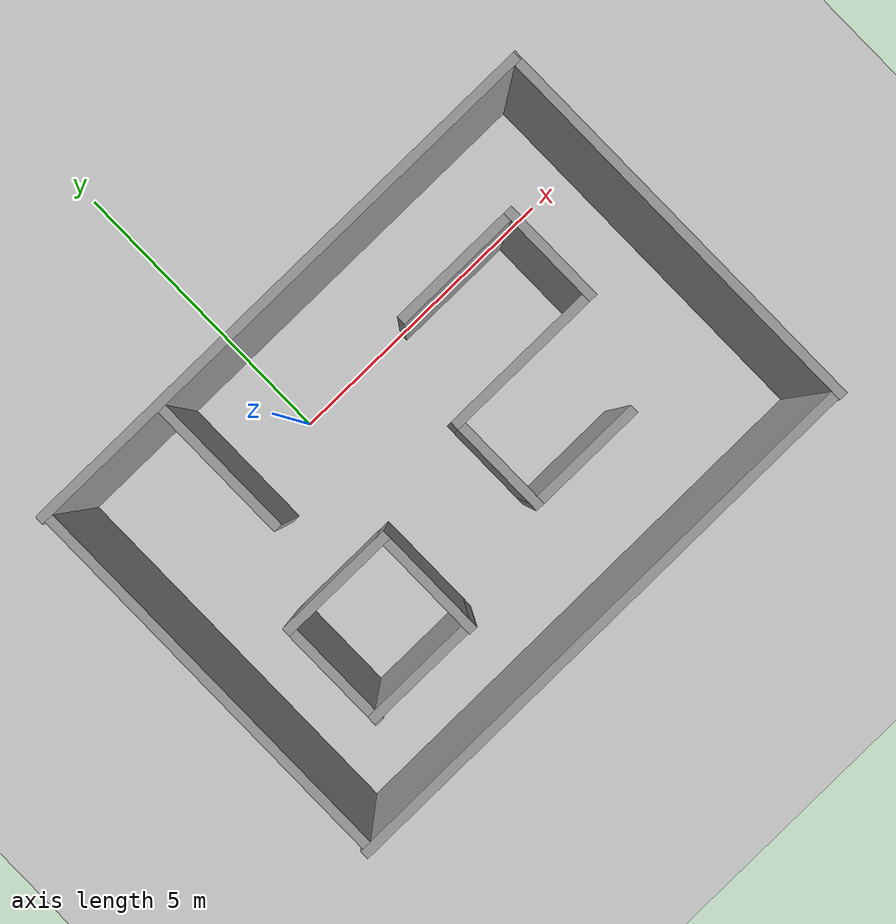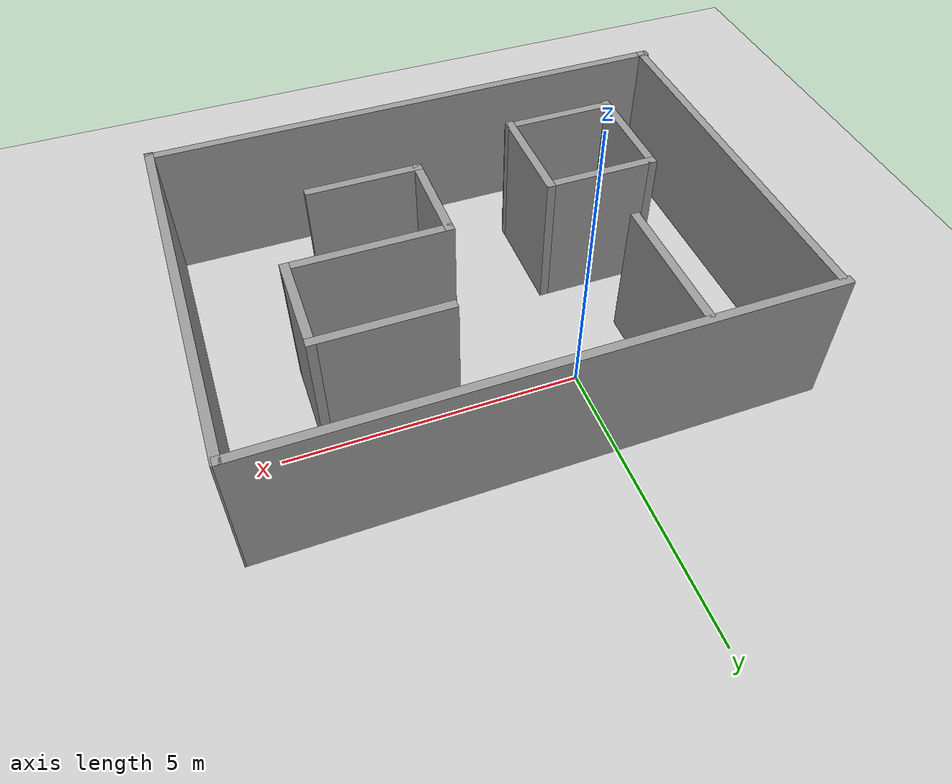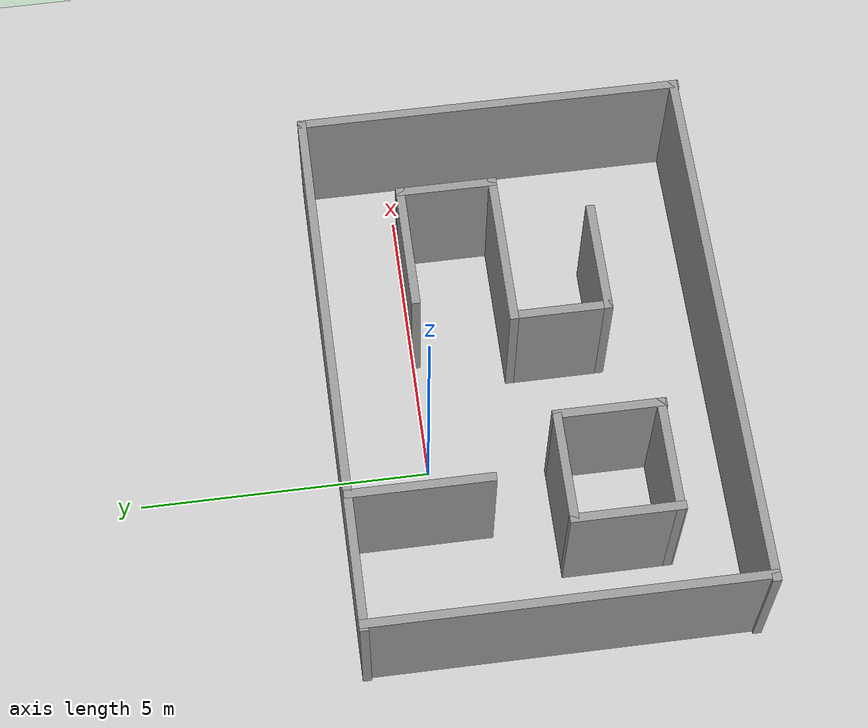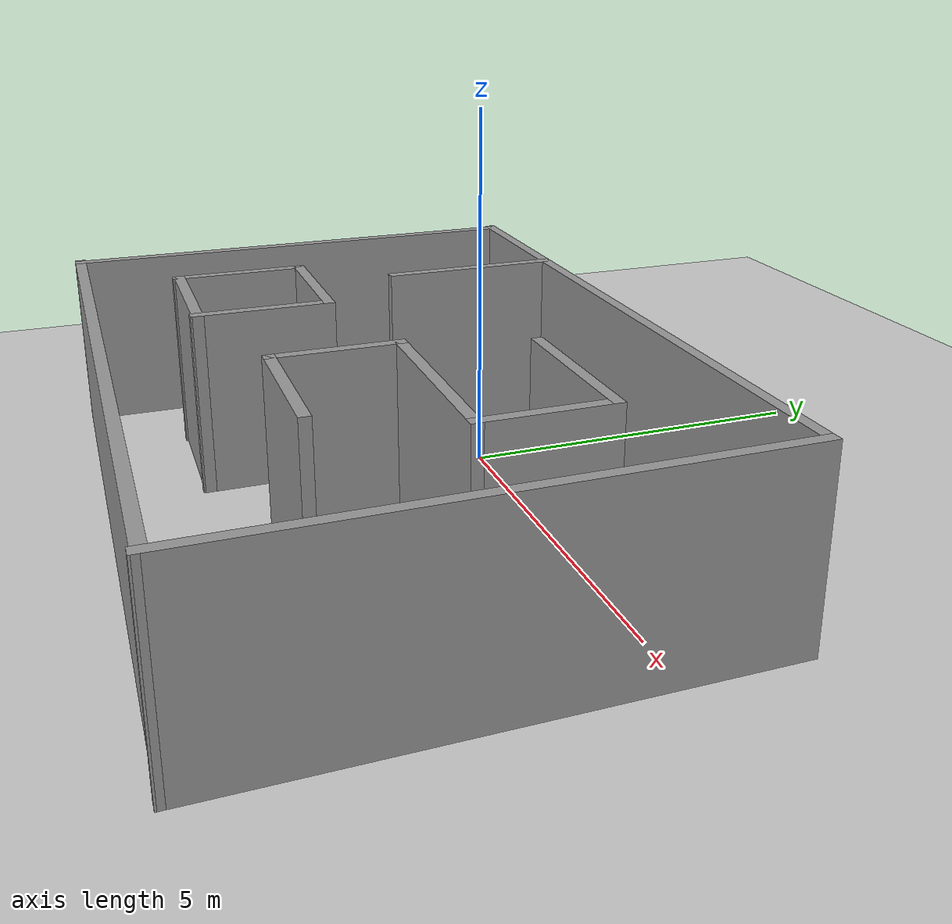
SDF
<sdf version="1.6">
 <world name="default">
  <light name="sun" type="directional">
   <pose>0 0 10 0 -0 0</pose>
   <diffuse>0.8 0.8 0.8 1</diffuse>
   <specular>0.2 0.2 0.2 1</specular>
   <attenuation>
    <range>1000</range>
    <constant>0.9</constant>
    <linear>0.01</linear>
    <quadratic>0.001</quadratic>
   </attenuation>
   <direction>-0.5 0.1 -0.9</direction>
  </light>
  <model name="ground_plane">
   <static>1</static>
   <link name="link">
    <collision name="collision">
     <geometry><plane><normal>0 0 1</normal><size>100 100</size></plane></geometry>
     <surface>
      <contact><collide_bitmask>65535</collide_bitmask></contact>
      <friction><ode><mu>100</mu><mu2>50</mu2></ode></friction>
     </surface>
    </collision>
    <visual name="visual">
     <cast_shadows>0</cast_shadows>
     <geometry><plane><normal>0 0 1</normal><size>100 100</size></plane></geometry>
     <material>
      <script><uri>file://media/materials/scripts/gazebo.material</uri><name>Gazebo/Grey</name></script>
     </material>
    </visual>
   </link>
  </model>
  <gravity>0 0 -9.8</gravity>
  <magnetic_field>6e-06 2.3e-05 -4.2e-05</magnetic_field>
  <atmosphere type="adiabatic"/>
  <physics name="default_physics" default="0" type="ode">
   <max_step_size>0.001</max_step_size>
   <real_time_factor>1</real_time_factor>
   <real_time_update_rate>1000</real_time_update_rate>
  </physics>
  <scene><ambient>0.4 0.4 0.4 1</ambient><background>0.7 0.7 0.7 1</background><shadows>1</shadows></scene>
  <spherical_coordinates>
   <surface_model>EARTH_WGS84</surface_model>
   <latitude_deg>0</latitude_deg>
   <longitude_deg>0</longitude_deg>
   <elevation>0</elevation>
   <heading_deg>0</heading_deg>
  </spherical_coordinates>
  <model name="my_building">
   <link name="Wall_0">
    <pose>-0.0133 3.30088 0 0 -0 0</pose>
    <visual name="Wall_0_Visual">
     <pose>0 0 1.25 0 -0 0</pose>
     <geometry><box><size>9.43601 0.15 2.5</size></box></geometry>
     <material>
      <script><uri>file://media/materials/scripts/gazebo.material</uri><name>Gazebo/Grey</name></script>
      <ambient>1 1 1 1</ambient>
      <shader type="pixel"/>
     </material>
     <meta><layer>0</layer></meta>
    </visual>
    <collision name="Wall_0_Collision">
     <pose>0 0 1.25 0 -0 0</pose>
     <geometry><box><size>9.43601 0.15 2.5</size></box></geometry>
     <surface>
      <friction>
       <ode><mu>1</mu><mu2>1</mu2><fdir1>0 0 0</fdir1><slip1>0</slip1><slip2>0</slip2></ode>
       <torsional>
        <coefficient>1</coefficient>
        <patch_radius>0</patch_radius>
        <surface_radius>0</surface_radius>
        <use_patch_radius>1</use_patch_radius>
        <ode><slip>0</slip></ode>
       </torsional>
      </friction>
      <bounce><restitution_coefficient>0</restitution_coefficient><threshold>1e+06</threshold></bounce>
      <contact>
       <collide_without_contact>0</collide_without_contact>
       <collide_without_contact_bitmask>1</collide_without_contact_bitmask>
       <collide_bitmask>1</collide_bitmask>
       <ode>
        <soft_cfm>0</soft_cfm>
        <soft_erp>0.2</soft_erp>
        <kp>1e+13</kp>
        <kd>1</kd>
        <max_vel>0.01</max_vel>
        <min_depth>0</min_depth>
       </ode>
       <bullet>
        <split_impulse>1</split_impulse>
        <split_impulse_penetration_threshold>-0.01</split_impulse_penetration_threshold>
        <soft_cfm>0</soft_cfm>
        <soft_erp>0.2</soft_erp>
        <kp>1e+13</kp>
        <kd>1</kd>
       </bullet>
      </contact>
     </surface>
    </collision>
   </link>
   <link name="Wall_1">
    <pose>4.65631 9.3e-05 0 0 0 -1.5708</pose>
    <visual name="Wall_1_Visual">
     <pose>0 0 1.25 0 -0 0</pose>
     <geometry><box><size>6.75157 0.15 2.5</size></box></geometry>
     <material>
      <script><uri>file://media/materials/scripts/gazebo.material</uri><name>Gazebo/Grey</name></script>
      <ambient>1 1 1 1</ambient>
      <shader type="pixel"/>
     </material>
     <meta><layer>0</layer></meta>
    </visual>
    <collision name="Wall_1_Collision">
     <pose>0 0 1.25 0 -0 0</pose>
     <geometry><box><size>6.75157 0.15 2.5</size></box></geometry>
     <surface>
      <friction>
       <ode><mu>1</mu><mu2>1</mu2><fdir1>0 0 0</fdir1><slip1>0</slip1><slip2>0</slip2></ode>
       <torsional>
        <coefficient>1</coefficient>
        <patch_radius>0</patch_radius>
        <surface_radius>0</surface_radius>
        <use_patch_radius>1</use_patch_radius>
        <ode><slip>0</slip></ode>
       </torsional>
      </friction>
      <bounce><restitution_coefficient>0</restitution_coefficient><threshold>1e+06</threshold></bounce>
      <contact>
       <collide_without_contact>0</collide_without_contact>
       <collide_without_contact_bitmask>1</collide_without_contact_bitmask>
       <collide_bitmask>1</collide_bitmask>
       <ode>
        <soft_cfm>0</soft_cfm>
        <soft_erp>0.2</soft_erp>
        <kp>1e+13</kp>
        <kd>1</kd>
        <max_vel>0.01</max_vel>
        <min_depth>0</min_depth>
       </ode>
       <bullet>
        <split_impulse>1</split_impulse>
        <split_impulse_penetration_threshold>-0.01</split_impulse_penetration_threshold>
        <soft_cfm>0</soft_cfm>
        <soft_erp>0.2</soft_erp>
        <kp>1e+13</kp>
        <kd>1</kd>
       </bullet>
      </contact>
     </surface>
    </collision>
   </link>
   <link name="Wall_10">
    <pose>3.08812 0.963122 0 0 0 -1.5708</pose>
    <visual name="Wall_10_Visual">
     <pose>0 0 1.25 0 -0 0</pose>
     <geometry><box><size>1.75 0.15 2.5</size></box></geometry>
     <material>
      <script><uri>file://media/materials/scripts/gazebo.material</uri><name>Gazebo/Grey</name></script>
      <ambient>1 1 1 1</ambient>
      <shader type="pixel"/>
     </material>
     <meta><layer>0</layer></meta>
    </visual>
    <collision name="Wall_10_Collision">
     <pose>0 0 1.25 0 -0 0</pose>
     <geometry><box><size>1.75 0.15 2.5</size></box></geometry>
     <surface>
      <friction>
       <ode><mu>1</mu><mu2>1</mu2><fdir1>0 0 0</fdir1><slip1>0</slip1><slip2>0</slip2></ode>
       <torsional>
        <coefficient>1</coefficient>
        <patch_radius>0</patch_radius>
        <surface_radius>0</surface_radius>
        <use_patch_radius>1</use_patch_radius>
        <ode><slip>0</slip></ode>
       </torsional>
      </friction>
      <bounce><restitution_coefficient>0</restitution_coefficient><threshold>1e+06</threshold></bounce>
      <contact>
       <collide_without_contact>0</collide_without_contact>
       <collide_without_contact_bitmask>1</collide_without_contact_bitmask>
       <collide_bitmask>1</collide_bitmask>
       <ode>
        <soft_cfm>0</soft_cfm>
        <soft_erp>0.2</soft_erp>
        <kp>1e+13</kp>
        <kd>1</kd>
        <max_vel>0.01</max_vel>
        <min_depth>0</min_depth>
       </ode>
       <bullet>
        <split_impulse>1</split_impulse>
        <split_impulse_penetration_threshold>-0.01</split_impulse_penetration_threshold>
        <soft_cfm>0</soft_cfm>
        <soft_erp>0.2</soft_erp>
        <kp>1e+13</kp>
        <kd>1</kd>
       </bullet>
      </contact>
     </surface>
    </collision>
   </link>
   <link name="Wall_11">
    <pose>1.78812 0.163122 0 0 -0 3.14159</pose>
    <visual name="Wall_11_Visual">
     <pose>0 0 1.25 0 -0 0</pose>
     <geometry><box><size>2.75 0.15 2.5</size></box></geometry>
     <material>
      <script><uri>file://media/materials/scripts/gazebo.material</uri><name>Gazebo/Grey</name></script>
      <ambient>1 1 1 1</ambient>
      <shader type="pixel"/>
     </material>
     <meta><layer>0</layer></meta>
    </visual>
    <collision name="Wall_11_Collision">
     <pose>0 0 1.25 0 -0 0</pose>
     <geometry><box><size>2.75 0.15 2.5</size></box></geometry>
     <surface>
      <friction>
       <ode><mu>1</mu><mu2>1</mu2><fdir1>0 0 0</fdir1><slip1>0</slip1><slip2>0</slip2></ode>
       <torsional>
        <coefficient>1</coefficient>
        <patch_radius>0</patch_radius>
        <surface_radius>0</surface_radius>
        <use_patch_radius>1</use_patch_radius>
        <ode><slip>0</slip></ode>
       </torsional>
      </friction>
      <bounce><restitution_coefficient>0</restitution_coefficient><threshold>1e+06</threshold></bounce>
      <contact>
       <collide_without_contact>0</collide_without_contact>
       <collide_without_contact_bitmask>1</collide_without_contact_bitmask>
       <collide_bitmask>1</collide_bitmask>
       <ode>
        <soft_cfm>0</soft_cfm>
        <soft_erp>0.2</soft_erp>
        <kp>1e+13</kp>
        <kd>1</kd>
        <max_vel>0.01</max_vel>
        <min_depth>0</min_depth>
       </ode>
       <bullet>
        <split_impulse>1</split_impulse>
        <split_impulse_penetration_threshold>-0.01</split_impulse_penetration_threshold>
        <soft_cfm>0</soft_cfm>
        <soft_erp>0.2</soft_erp>
        <kp>1e+13</kp>
        <kd>1</kd>
       </bullet>
      </contact>
     </surface>
    </collision>
   </link>
   <link name="Wall_12">
    <pose>0.488124 -0.636878 0 0 0 -1.5708</pose>
    <visual name="Wall_12_Visual">
     <pose>0 0 1.25 0 -0 0</pose>
     <geometry><box><size>1.75 0.15 2.5</size></box></geometry>
     <material>
      <script><uri>file://media/materials/scripts/gazebo.material</uri><name>Gazebo/Grey</name></script>
      <ambient>1 1 1 1</ambient>
      <shader type="pixel"/>
     </material>
     <meta><layer>0</layer></meta>
    </visual>
    <collision name="Wall_12_Collision">
     <pose>0 0 1.25 0 -0 0</pose>
     <geometry><box><size>1.75 0.15 2.5</size></box></geometry>
     <surface>
      <friction>
       <ode><mu>1</mu><mu2>1</mu2><fdir1>0 0 0</fdir1><slip1>0</slip1><slip2>0</slip2></ode>
       <torsional>
        <coefficient>1</coefficient>
        <patch_radius>0</patch_radius>
        <surface_radius>0</surface_radius>
        <use_patch_radius>1</use_patch_radius>
        <ode><slip>0</slip></ode>
       </torsional>
      </friction>
      <bounce><restitution_coefficient>0</restitution_coefficient><threshold>1e+06</threshold></bounce>
      <contact>
       <collide_without_contact>0</collide_without_contact>
       <collide_without_contact_bitmask>1</collide_without_contact_bitmask>
       <collide_bitmask>1</collide_bitmask>
       <ode>
        <soft_cfm>0</soft_cfm>
        <soft_erp>0.2</soft_erp>
        <kp>1e+13</kp>
        <kd>1</kd>
        <max_vel>0.01</max_vel>
        <min_depth>0</min_depth>
       </ode>
       <bullet>
        <split_impulse>1</split_impulse>
        <split_impulse_penetration_threshold>-0.01</split_impulse_penetration_threshold>
        <soft_cfm>0</soft_cfm>
        <soft_erp>0.2</soft_erp>
        <kp>1e+13</kp>
        <kd>1</kd>
       </bullet>
      </contact>
     </surface>
    </collision>
   </link>
   <link name="Wall_13">
    <pose>1.41312 -1.43688 0 0 -0 0</pose>
    <visual name="Wall_13_Visual">
     <pose>0 0 1.25 0 -0 0</pose>
     <geometry><box><size>2 0.15 2.5</size></box></geometry>
     <material>
      <script><uri>file://media/materials/scripts/gazebo.material</uri><name>Gazebo/Grey</name></script>
      <ambient>1 1 1 1</ambient>
      <shader type="pixel"/>
     </material>
     <meta><layer>0</layer></meta>
    </visual>
    <collision name="Wall_13_Collision">
     <pose>0 0 1.25 0 -0 0</pose>
     <geometry><box><size>2 0.15 2.5</size></box></geometry>
     <surface>
      <friction>
       <ode><mu>1</mu><mu2>1</mu2><fdir1>0 0 0</fdir1><slip1>0</slip1><slip2>0</slip2></ode>
       <torsional>
        <coefficient>1</coefficient>
        <patch_radius>0</patch_radius>
        <surface_radius>0</surface_radius>
        <use_patch_radius>1</use_patch_radius>
        <ode><slip>0</slip></ode>
       </torsional>
      </friction>
      <bounce><restitution_coefficient>0</restitution_coefficient><threshold>1e+06</threshold></bounce>
      <contact>
       <collide_without_contact>0</collide_without_contact>
       <collide_without_contact_bitmask>1</collide_without_contact_bitmask>
       <collide_bitmask>1</collide_bitmask>
       <ode>
        <soft_cfm>0</soft_cfm>
        <soft_erp>0.2</soft_erp>
        <kp>1e+13</kp>
        <kd>1</kd>
        <max_vel>0.01</max_vel>
        <min_depth>0</min_depth>
       </ode>
       <bullet>
        <split_impulse>1</split_impulse>
        <split_impulse_penetration_threshold>-0.01</split_impulse_penetration_threshold>
        <soft_cfm>0</soft_cfm>
        <soft_erp>0.2</soft_erp>
        <kp>1e+13</kp>
        <kd>1</kd>
       </bullet>
      </contact>
     </surface>
    </collision>
   </link>
   <link name="Wall_15">
    <pose>-2.33498 -0.272372 0 0 -0 0</pose>
    <visual name="Wall_15_Visual">
     <pose>0 0 1.25 0 -0 0</pose>
     <geometry><box><size>2 0.15 2.5</size></box></geometry>
     <material>
      <script><uri>file://media/materials/scripts/gazebo.material</uri><name>Gazebo/Grey</name></script>
      <ambient>1 1 1 1</ambient>
      <shader type="pixel"/>
     </material>
     <meta><layer>0</layer></meta>
    </visual>
    <collision name="Wall_15_Collision">
     <pose>0 0 1.25 0 -0 0</pose>
     <geometry><box><size>2 0.15 2.5</size></box></geometry>
     <surface>
      <friction>
       <ode><mu>1</mu><mu2>1</mu2><fdir1>0 0 0</fdir1><slip1>0</slip1><slip2>0</slip2></ode>
       <torsional>
        <coefficient>1</coefficient>
        <patch_radius>0</patch_radius>
        <surface_radius>0</surface_radius>
        <use_patch_radius>1</use_patch_radius>
        <ode><slip>0</slip></ode>
       </torsional>
      </friction>
      <bounce><restitution_coefficient>0</restitution_coefficient><threshold>1e+06</threshold></bounce>
      <contact>
       <collide_without_contact>0</collide_without_contact>
       <collide_without_contact_bitmask>1</collide_without_contact_bitmask>
       <collide_bitmask>1</collide_bitmask>
       <ode>
        <soft_cfm>0</soft_cfm>
        <soft_erp>0.2</soft_erp>
        <kp>1e+13</kp>
        <kd>1</kd>
        <max_vel>0.01</max_vel>
        <min_depth>0</min_depth>
       </ode>
       <bullet>
        <split_impulse>1</split_impulse>
        <split_impulse_penetration_threshold>-0.01</split_impulse_penetration_threshold>
        <soft_cfm>0</soft_cfm>
        <soft_erp>0.2</soft_erp>
        <kp>1e+13</kp>
        <kd>1</kd>
       </bullet>
      </contact>
     </surface>
    </collision>
   </link>
   <link name="Wall_16">
    <pose>-1.40998 -1.15111 0 0 0 -1.5708</pose>
    <visual name="Wall_16_Visual">
     <pose>0 0 1.25 0 -0 0</pose>
     <geometry><box><size>1.90748 0.15 2.5</size></box></geometry>
     <material>
      <script><uri>file://media/materials/scripts/gazebo.material</uri><name>Gazebo/Grey</name></script>
      <ambient>1 1 1 1</ambient>
      <shader type="pixel"/>
     </material>
     <meta><layer>0</layer></meta>
    </visual>
    <collision name="Wall_16_Collision">
     <pose>0 0 1.25 0 -0 0</pose>
     <geometry><box><size>1.90748 0.15 2.5</size></box></geometry>
     <surface>
      <friction>
       <ode><mu>1</mu><mu2>1</mu2><fdir1>0 0 0</fdir1><slip1>0</slip1><slip2>0</slip2></ode>
       <torsional>
        <coefficient>1</coefficient>
        <patch_radius>0</patch_radius>
        <surface_radius>0</surface_radius>
        <use_patch_radius>1</use_patch_radius>
        <ode><slip>0</slip></ode>
       </torsional>
      </friction>
      <bounce><restitution_coefficient>0</restitution_coefficient><threshold>1e+06</threshold></bounce>
      <contact>
       <collide_without_contact>0</collide_without_contact>
       <collide_without_contact_bitmask>1</collide_without_contact_bitmask>
       <collide_bitmask>1</collide_bitmask>
       <ode>
        <soft_cfm>0</soft_cfm>
        <soft_erp>0.2</soft_erp>
        <kp>1e+13</kp>
        <kd>1</kd>
        <max_vel>0.01</max_vel>
        <min_depth>0</min_depth>
       </ode>
       <bullet>
        <split_impulse>1</split_impulse>
        <split_impulse_penetration_threshold>-0.01</split_impulse_penetration_threshold>
        <soft_cfm>0</soft_cfm>
        <soft_erp>0.2</soft_erp>
        <kp>1e+13</kp>
        <kd>1</kd>
       </bullet>
      </contact>
     </surface>
    </collision>
   </link>
   <link name="Wall_17">
    <pose>-2.33498 -2.00672 0 0 -0 3.14159</pose>
    <visual name="Wall_17_Visual">
     <pose>0 0 1.25 0 -0 0</pose>
     <geometry><box><size>2 0.15 2.5</size></box></geometry>
     <material>
      <script><uri>file://media/materials/scripts/gazebo.material</uri><name>Gazebo/Grey</name></script>
      <ambient>1 1 1 1</ambient>
      <shader type="pixel"/>
     </material>
     <meta><layer>0</layer></meta>
    </visual>
    <collision name="Wall_17_Collision">
     <pose>0 0 1.25 0 -0 0</pose>
     <geometry><box><size>2 0.15 2.5</size></box></geometry>
     <surface>
      <friction>
       <ode><mu>1</mu><mu2>1</mu2><fdir1>0 0 0</fdir1><slip1>0</slip1><slip2>0</slip2></ode>
       <torsional>
        <coefficient>1</coefficient>
        <patch_radius>0</patch_radius>
        <surface_radius>0</surface_radius>
        <use_patch_radius>1</use_patch_radius>
        <ode><slip>0</slip></ode>
       </torsional>
      </friction>
      <bounce><restitution_coefficient>0</restitution_coefficient><threshold>1e+06</threshold></bounce>
      <contact>
       <collide_without_contact>0</collide_without_contact>
       <collide_without_contact_bitmask>1</collide_without_contact_bitmask>
       <collide_bitmask>1</collide_bitmask>
       <ode>
        <soft_cfm>0</soft_cfm>
        <soft_erp>0.2</soft_erp>
        <kp>1e+13</kp>
        <kd>1</kd>
        <max_vel>0.01</max_vel>
        <min_depth>0</min_depth>
       </ode>
       <bullet>
        <split_impulse>1</split_impulse>
        <split_impulse_penetration_threshold>-0.01</split_impulse_penetration_threshold>
        <soft_cfm>0</soft_cfm>
        <soft_erp>0.2</soft_erp>
        <kp>1e+13</kp>
        <kd>1</kd>
       </bullet>
      </contact>
     </surface>
    </collision>
   </link>
   <link name="Wall_18">
    <pose>-3.25998 -1.15111 0 0 -0 1.5708</pose>
    <visual name="Wall_18_Visual">
     <pose>0 0 1.25 0 -0 0</pose>
     <geometry><box><size>1.90748 0.15 2.5</size></box></geometry>
     <material>
      <script><uri>file://media/materials/scripts/gazebo.material</uri><name>Gazebo/Grey</name></script>
      <ambient>1 1 1 1</ambient>
      <shader type="pixel"/>
     </material>
     <meta><layer>0</layer></meta>
    </visual>
    <collision name="Wall_18_Collision">
     <pose>0 0 1.25 0 -0 0</pose>
     <geometry><box><size>1.90748 0.15 2.5</size></box></geometry>
     <surface>
      <friction>
       <ode><mu>1</mu><mu2>1</mu2><fdir1>0 0 0</fdir1><slip1>0</slip1><slip2>0</slip2></ode>
       <torsional>
        <coefficient>1</coefficient>
        <patch_radius>0</patch_radius>
        <surface_radius>0</surface_radius>
        <use_patch_radius>1</use_patch_radius>
        <ode><slip>0</slip></ode>
       </torsional>
      </friction>
      <bounce><restitution_coefficient>0</restitution_coefficient><threshold>1e+06</threshold></bounce>
      <contact>
       <collide_without_contact>0</collide_without_contact>
       <collide_without_contact_bitmask>1</collide_without_contact_bitmask>
       <collide_bitmask>1</collide_bitmask>
       <ode>
        <soft_cfm>0</soft_cfm>
        <soft_erp>0.2</soft_erp>
        <kp>1e+13</kp>
        <kd>1</kd>
        <max_vel>0.01</max_vel>
        <min_depth>0</min_depth>
       </ode>
       <bullet>
        <split_impulse>1</split_impulse>
        <split_impulse_penetration_threshold>-0.01</split_impulse_penetration_threshold>
        <soft_cfm>0</soft_cfm>
        <soft_erp>0.2</soft_erp>
        <kp>1e+13</kp>
        <kd>1</kd>
       </bullet>
      </contact>
     </surface>
    </collision>
   </link>
   <link name="Wall_2">
    <pose>0 -3.28913 0 0 0 -3.13911</pose>
    <visual name="Wall_2_Visual">
     <pose>0 0 1.25 0 -0 0</pose>
     <geometry><box><size>9.46264 0.15 2.5</size></box></geometry>
     <material>
      <script><uri>file://media/materials/scripts/gazebo.material</uri><name>Gazebo/Grey</name></script>
      <ambient>1 1 1 1</ambient>
      <shader type="pixel"/>
     </material>
     <meta><layer>0</layer></meta>
    </visual>
    <collision name="Wall_2_Collision">
     <pose>0 0 1.25 0 -0 0</pose>
     <geometry><box><size>9.46264 0.15 2.5</size></box></geometry>
     <surface>
      <friction>
       <ode><mu>1</mu><mu2>1</mu2><fdir1>0 0 0</fdir1><slip1>0</slip1><slip2>0</slip2></ode>
       <torsional>
        <coefficient>1</coefficient>
        <patch_radius>0</patch_radius>
        <surface_radius>0</surface_radius>
        <use_patch_radius>1</use_patch_radius>
        <ode><slip>0</slip></ode>
       </torsional>
      </friction>
      <bounce><restitution_coefficient>0</restitution_coefficient><threshold>1e+06</threshold></bounce>
      <contact>
       <collide_without_contact>0</collide_without_contact>
       <collide_without_contact_bitmask>1</collide_without_contact_bitmask>
       <collide_bitmask>1</collide_bitmask>
       <ode>
        <soft_cfm>0</soft_cfm>
        <soft_erp>0.2</soft_erp>
        <kp>1e+13</kp>
        <kd>1</kd>
        <max_vel>0.01</max_vel>
        <min_depth>0</min_depth>
       </ode>
       <bullet>
        <split_impulse>1</split_impulse>
        <split_impulse_penetration_threshold>-0.01</split_impulse_penetration_threshold>
        <soft_cfm>0</soft_cfm>
        <soft_erp>0.2</soft_erp>
        <kp>1e+13</kp>
        <kd>1</kd>
       </bullet>
      </contact>
     </surface>
    </collision>
   </link>
   <link name="Wall_3">
    <pose>-4.61005 9.3e-05 0 0 -0 1.5708</pose>
    <visual name="Wall_3_Visual">
     <pose>0 0 1.25 0 -0 0</pose>
     <geometry><box><size>6.75157 0.15 2.5</size></box></geometry>
     <material>
      <script><uri>file://media/materials/scripts/gazebo.material</uri><name>Gazebo/Grey</name></script>
      <ambient>1 1 1 1</ambient>
      <shader type="pixel"/>
     </material>
     <meta><layer>0</layer></meta>
    </visual>
    <collision name="Wall_3_Collision">
     <pose>0 0 1.25 0 -0 0</pose>
     <geometry><box><size>6.75157 0.15 2.5</size></box></geometry>
     <surface>
      <friction>
       <ode><mu>1</mu><mu2>1</mu2><fdir1>0 0 0</fdir1><slip1>0</slip1><slip2>0</slip2></ode>
       <torsional>
        <coefficient>1</coefficient>
        <patch_radius>0</patch_radius>
        <surface_radius>0</surface_radius>
        <use_patch_radius>1</use_patch_radius>
        <ode><slip>0</slip></ode>
       </torsional>
      </friction>
      <bounce><restitution_coefficient>0</restitution_coefficient><threshold>1e+06</threshold></bounce>
      <contact>
       <collide_without_contact>0</collide_without_contact>
       <collide_without_contact_bitmask>1</collide_without_contact_bitmask>
       <collide_bitmask>1</collide_bitmask>
       <ode>
        <soft_cfm>0</soft_cfm>
        <soft_erp>0.2</soft_erp>
        <kp>1e+13</kp>
        <kd>1</kd>
        <max_vel>0.01</max_vel>
        <min_depth>0</min_depth>
       </ode>
       <bullet>
        <split_impulse>1</split_impulse>
        <split_impulse_penetration_threshold>-0.01</split_impulse_penetration_threshold>
        <soft_cfm>0</soft_cfm>
        <soft_erp>0.2</soft_erp>
        <kp>1e+13</kp>
        <kd>1</kd>
       </bullet>
      </contact>
     </surface>
    </collision>
   </link>
   <link name="Wall_6">
    <pose>-2.38102 2.11474 0 0 0 -1.5708</pose>
    <visual name="Wall_6_Visual">
     <pose>0 0 1.25 0 -0 0</pose>
     <geometry><box><size>2.5 0.15 2.5</size></box></geometry>
     <material>
      <script><uri>file://media/materials/scripts/gazebo.material</uri><name>Gazebo/Grey</name></script>
      <ambient>1 1 1 1</ambient>
      <shader type="pixel"/>
     </material>
     <meta><layer>0</layer></meta>
    </visual>
    <collision name="Wall_6_Collision">
     <pose>0 0 1.25 0 -0 0</pose>
     <geometry><box><size>2.5 0.15 2.5</size></box></geometry>
     <surface>
      <friction>
       <ode><mu>1</mu><mu2>1</mu2><fdir1>0 0 0</fdir1><slip1>0</slip1><slip2>0</slip2></ode>
       <torsional>
        <coefficient>1</coefficient>
        <patch_radius>0</patch_radius>
        <surface_radius>0</surface_radius>
        <use_patch_radius>1</use_patch_radius>
        <ode><slip>0</slip></ode>
       </torsional>
      </friction>
      <bounce><restitution_coefficient>0</restitution_coefficient><threshold>1e+06</threshold></bounce>
      <contact>
       <collide_without_contact>0</collide_without_contact>
       <collide_without_contact_bitmask>1</collide_without_contact_bitmask>
       <collide_bitmask>1</collide_bitmask>
       <ode>
        <soft_cfm>0</soft_cfm>
        <soft_erp>0.2</soft_erp>
        <kp>1e+13</kp>
        <kd>1</kd>
        <max_vel>0.01</max_vel>
        <min_depth>0</min_depth>
       </ode>
       <bullet>
        <split_impulse>1</split_impulse>
        <split_impulse_penetration_threshold>-0.01</split_impulse_penetration_threshold>
        <soft_cfm>0</soft_cfm>
        <soft_erp>0.2</soft_erp>
        <kp>1e+13</kp>
        <kd>1</kd>
       </bullet>
      </contact>
     </surface>
    </collision>
   </link>
   <link name="Wall_8">
    <pose>2.03812 1.76312 0 0 -0 0</pose>
    <visual name="Wall_8_Visual">
     <pose>0 0 1.25 0 -0 0</pose>
     <geometry><box><size>2.25 0.15 2.5</size></box></geometry>
     <material>
      <script><uri>file://media/materials/scripts/gazebo.material</uri><name>Gazebo/Grey</name></script>
      <ambient>1 1 1 1</ambient>
      <shader type="pixel"/>
     </material>
     <meta><layer>0</layer></meta>
    </visual>
    <collision name="Wall_8_Collision">
     <pose>0 0 1.25 0 -0 0</pose>
     <geometry><box><size>2.25 0.15 2.5</size></box></geometry>
     <surface>
      <friction>
       <ode><mu>1</mu><mu2>1</mu2><fdir1>0 0 0</fdir1><slip1>0</slip1><slip2>0</slip2></ode>
       <torsional>
        <coefficient>1</coefficient>
        <patch_radius>0</patch_radius>
        <surface_radius>0</surface_radius>
        <use_patch_radius>1</use_patch_radius>
        <ode><slip>0</slip></ode>
       </torsional>
      </friction>
      <bounce><restitution_coefficient>0</restitution_coefficient><threshold>1e+06</threshold></bounce>
      <contact>
       <collide_without_contact>0</collide_without_contact>
       <collide_without_contact_bitmask>1</collide_without_contact_bitmask>
       <collide_bitmask>1</collide_bitmask>
       <ode>
        <soft_cfm>0</soft_cfm>
        <soft_erp>0.2</soft_erp>
        <kp>1e+13</kp>
        <kd>1</kd>
        <max_vel>0.01</max_vel>
        <min_depth>0</min_depth>
       </ode>
       <bullet>
        <split_impulse>1</split_impulse>
        <split_impulse_penetration_threshold>-0.01</split_impulse_penetration_threshold>
        <soft_cfm>0</soft_cfm>
        <soft_erp>0.2</soft_erp>
        <kp>1e+13</kp>
        <kd>1</kd>
       </bullet>
      </contact>
     </surface>
    </collision>
   </link>
   <static>1</static>
   <pose>1.14798 -1.80419 0 0 -0 0</pose>
  </model>
 </world>
</sdf>
